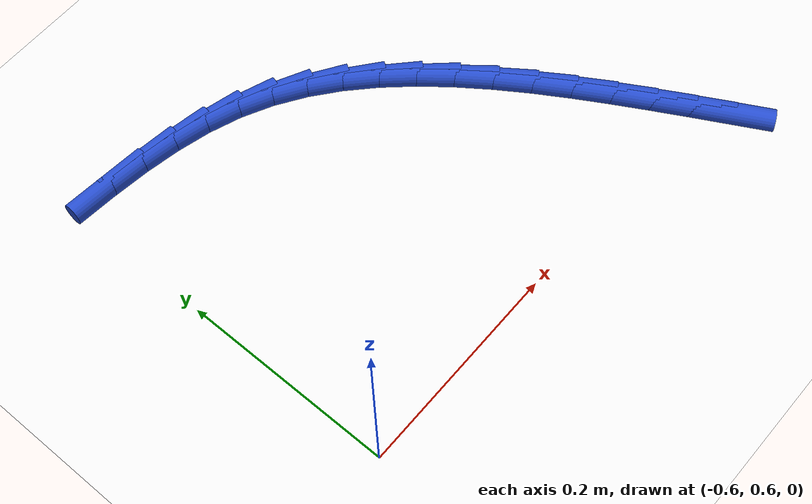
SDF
<sdf version="1.6">
 <world name="default">
  <model name="ground_plane">
   <static>1</static>
   <link name="link">
    <collision name="collision">
     <geometry><plane><normal>0 0 1</normal><size>100 100</size></plane></geometry>
     <surface><friction><ode><mu>100</mu><mu2>50</mu2></ode></friction></surface>
    </collision>
    <visual name="visual">
     <cast_shadows>0</cast_shadows>
     <geometry><plane><normal>0 0 1</normal><size>100 100</size></plane></geometry>
     <material>
      <script><uri>file://media/materials/scripts/gazebo.material</uri><name>Gazebo/WhiteGlow</name></script>
     </material>
    </visual>
   </link>
  </model>
  <model name="line">
   <link name="link_18">
    <pose>-0.16329533921640693 0.5705548957017055 0.01 0 1.57 -1.0789768185840183</pose>
    <collision name="collision">
     <geometry><cylinder><radius>0.01</radius><length>0.08</length></cylinder></geometry>
    </collision>
    <visual name="visual">
     <material>
      <script><name>Gazebo/Blue</name><uri>file://media/materials/scripts/gazebo.material</uri></script>
     </material>
     <geometry><cylinder><radius>0.01</radius><length>0.08</length></cylinder></geometry>
    </visual>
   </link>
   <link name="link_19">
    <pose>-0.17954653282520597 0.6008897041320237 0.01 0 1.57 -1.0710127763693755</pose>
    <collision name="collision">
     <geometry><cylinder><radius>0.01</radius><length>0.08</length></cylinder></geometry>
    </collision>
    <visual name="visual">
     <material>
      <script><name>Gazebo/Blue</name><uri>file://media/materials/scripts/gazebo.material</uri></script>
     </material>
     <geometry><cylinder><radius>0.01</radius><length>0.08</length></cylinder></geometry>
    </visual>
   </link>
   <link name="link_20">
    <pose>-0.19625085571226797 0.6314824988389675 0.01 0 1.57 -1.0614453183892587</pose>
    <collision name="collision">
     <geometry><cylinder><radius>0.01</radius><length>0.08</length></cylinder></geometry>
    </collision>
    <visual name="visual">
     <material>
      <script><name>Gazebo/Blue</name><uri>file://media/materials/scripts/gazebo.material</uri></script>
     </material>
     <geometry><cylinder><radius>0.01</radius><length>0.08</length></cylinder></geometry>
    </visual>
   </link>
   <link name="link_21">
    <pose>-0.21343052859951442 0.6622424958474304 0.01 0 1.57 -1.0448038570359097</pose>
    <collision name="collision">
     <geometry><cylinder><radius>0.01</radius><length>0.08</length></cylinder></geometry>
    </collision>
    <visual name="visual">
     <material>
      <script><name>Gazebo/Blue</name><uri>file://media/materials/scripts/gazebo.material</uri></script>
     </material>
     <geometry><cylinder><radius>0.01</radius><length>0.08</length></cylinder></geometry>
    </visual>
   </link>
   <link name="link_22">
    <pose>-0.23120072769625538 0.6928519400454546 0.01 0 1.57 -1.0204761212976012</pose>
    <collision name="collision">
     <geometry><cylinder><radius>0.01</radius><length>0.08</length></cylinder></geometry>
    </collision>
    <visual name="visual">
     <material>
      <script><name>Gazebo/Blue</name><uri>file://media/materials/scripts/gazebo.material</uri></script>
     </material>
     <geometry><cylinder><radius>0.01</radius><length>0.08</length></cylinder></geometry>
    </visual>
   </link>
   <link name="link_23">
    <pose>-0.24968346165155633 0.7229763934262662 0.01 0 1.57 -0.9879949300519528</pose>
    <collision name="collision">
     <geometry><cylinder><radius>0.01</radius><length>0.08</length></cylinder></geometry>
    </collision>
    <visual name="visual">
     <material>
      <script><name>Gazebo/Blue</name><uri>file://media/materials/scripts/gazebo.material</uri></script>
     </material>
     <geometry><cylinder><radius>0.01</radius><length>0.08</length></cylinder></geometry>
    </visual>
   </link>
   <link name="link_24">
    <pose>-0.26900073911448275 0.7522814179830905 0.01 0 1.57 -0.9466564023853514</pose>
    <collision name="collision">
     <geometry><cylinder><radius>0.01</radius><length>0.08</length></cylinder></geometry>
    </collision>
    <visual name="visual">
     <material>
      <script><name>Gazebo/Blue</name><uri>file://media/materials/scripts/gazebo.material</uri></script>
     </material>
     <geometry><cylinder><radius>0.01</radius><length>0.08</length></cylinder></geometry>
    </visual>
   </link>
   <link name="link_25">
    <pose>-0.28927456873410007 0.7804325757091531 0.01 0 1.57 -0.8955499958110168</pose>
    <collision name="collision">
     <geometry><cylinder><radius>0.01</radius><length>0.08</length></cylinder></geometry>
    </collision>
    <visual name="visual">
     <material>
      <script><name>Gazebo/Blue</name><uri>file://media/materials/scripts/gazebo.material</uri></script>
     </material>
     <geometry><cylinder><radius>0.01</radius><length>0.08</length></cylinder></geometry>
    </visual>
   </link>
   <link name="link_26">
    <pose>-0.31062695915947364 0.80709542859768 0.01 0 1.57 -0.8336199201617173</pose>
    <collision name="collision">
     <geometry><cylinder><radius>0.01</radius><length>0.08</length></cylinder></geometry>
    </collision>
    <visual name="visual">
     <material>
      <script><name>Gazebo/Blue</name><uri>file://media/materials/scripts/gazebo.material</uri></script>
     </material>
     <geometry><cylinder><radius>0.01</radius><length>0.08</length></cylinder></geometry>
    </visual>
   </link>
   <link name="link_27">
    <pose>-0.3331799190396692 0.8319355386418968 0.01 0 1.57 -0.7597884703567064</pose>
    <collision name="collision">
     <geometry><cylinder><radius>0.01</radius><length>0.08</length></cylinder></geometry>
    </collision>
    <visual name="visual">
     <material>
      <script><name>Gazebo/Blue</name><uri>file://media/materials/scripts/gazebo.material</uri></script>
     </material>
     <geometry><cylinder><radius>0.01</radius><length>0.08</length></cylinder></geometry>
    </visual>
   </link>
   <link name="link_28">
    <pose>-0.35705545702375197 0.8546184678350291 0.01 0 1.57 -0.6731787419636209</pose>
    <collision name="collision">
     <geometry><cylinder><radius>0.01</radius><length>0.08</length></cylinder></geometry>
    </collision>
    <visual name="visual">
     <material>
      <script><name>Gazebo/Blue</name><uri>file://media/materials/scripts/gazebo.material</uri></script>
     </material>
     <geometry><cylinder><radius>0.01</radius><length>0.08</length></cylinder></geometry>
    </visual>
   </link>
   <link name="link_29">
    <pose>-0.3823755817607874 0.8748097781703029 0.01 0 1.57 -0.5734644982853306</pose>
    <collision name="collision">
     <geometry><cylinder><radius>0.01</radius><length>0.08</length></cylinder></geometry>
    </collision>
    <visual name="visual">
     <material>
      <script><name>Gazebo/Blue</name><uri>file://media/materials/scripts/gazebo.material</uri></script>
     </material>
     <geometry><cylinder><radius>0.01</radius><length>0.08</length></cylinder></geometry>
    </visual>
   </link>
   <link name="link_30">
    <pose>-0.4092623018998411 0.8921750316409433 0.01 0 1.57 -0.46133064306873806</pose>
    <collision name="collision">
     <geometry><cylinder><radius>0.01</radius><length>0.08</length></cylinder></geometry>
    </collision>
    <visual name="visual">
     <material>
      <script><name>Gazebo/Blue</name><uri>file://media/materials/scripts/gazebo.material</uri></script>
     </material>
     <geometry><cylinder><radius>0.01</radius><length>0.08</length></cylinder></geometry>
    </visual>
   </link>
   <link name="link_31">
    <pose>-0.4378375366721783 0.9063799848374091 0.01 0 1.57 -0.34584840475191103</pose>
    <collision name="collision">
     <geometry><cylinder><radius>0.01</radius><length>0.08</length></cylinder></geometry>
    </collision>
    <visual name="visual">
     <material>
      <script><name>Gazebo/Blue</name><uri>file://media/materials/scripts/gazebo.material</uri></script>
     </material>
     <geometry><cylinder><radius>0.01</radius><length>0.08</length></cylinder></geometry>
    </visual>
   </link>
   <link name="link_32">
    <pose>-0.46812918850703805 0.9172950002509768 0.01 0 1.57 -0.2493242789697999</pose>
    <collision name="collision">
     <geometry><cylinder><radius>0.01</radius><length>0.08</length></cylinder></geometry>
    </collision>
    <visual name="visual">
     <material>
      <script><name>Gazebo/Blue</name><uri>file://media/materials/scripts/gazebo.material</uri></script>
     </material>
     <geometry><cylinder><radius>0.01</radius><length>0.08</length></cylinder></geometry>
    </visual>
   </link>
   <link name="link_33">
    <pose>-0.49989298336568777 0.9253827697248059 0.01 0 1.57 -0.1751539922061514</pose>
    <collision name="collision">
     <geometry><cylinder><radius>0.01</radius><length>0.08</length></cylinder></geometry>
    </collision>
    <visual name="visual">
     <material>
      <script><name>Gazebo/Blue</name><uri>file://media/materials/scripts/gazebo.material</uri></script>
     </material>
     <geometry><cylinder><radius>0.01</radius><length>0.08</length></cylinder></geometry>
    </visual>
   </link>
   <link name="link_34">
    <pose>-0.5328356786993496 0.9312125537780104 0.01 0 1.57 -0.12180783175830326</pose>
    <collision name="collision">
     <geometry><cylinder><radius>0.01</radius><length>0.08</length></cylinder></geometry>
    </collision>
    <visual name="visual">
     <material>
      <script><name>Gazebo/Blue</name><uri>file://media/materials/scripts/gazebo.material</uri></script>
     </material>
     <geometry><cylinder><radius>0.01</radius><length>0.08</length></cylinder></geometry>
    </visual>
   </link>
   <link name="link_35">
    <pose>-0.5666640319592466 0.935353612929705 0.01 0 1.57 -0.08755960623708033</pose>
    <collision name="collision">
     <geometry><cylinder><radius>0.01</radius><length>0.08</length></cylinder></geometry>
    </collision>
    <visual name="visual">
     <material>
      <script><name>Gazebo/Blue</name><uri>file://media/materials/scripts/gazebo.material</uri></script>
     </material>
     <geometry><cylinder><radius>0.01</radius><length>0.08</length></cylinder></geometry>
    </visual>
   </link>
  </model>
 </world>
</sdf>
